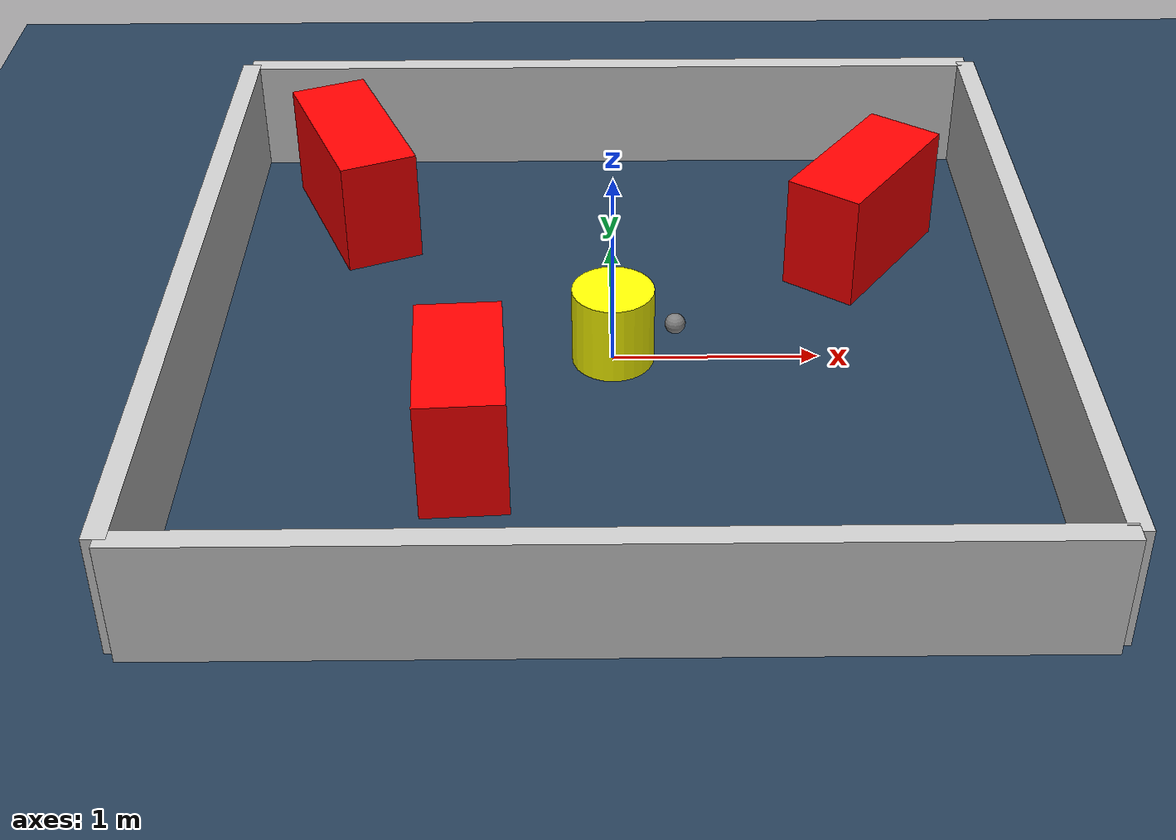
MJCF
<?xml version="1.0" ?>
<mujoco model="generated_environment">
  <option timestep="0.01" integrator="RK4" cone="elliptic"/>
  <default>
    <geom density="1"/>
  </default>
  <asset>
    <texture builtin="gradient" height="3072" rgb1="0.3 0.5 0.7" rgb2="0 0 0" type="skybox" width="512"/>
    <texture builtin="checker" height="300" mark="edge" markrgb="0.8 0.8 0.8" name="groundplane" rgb1="0.2 0.3 0.4" rgb2="0.1 0.2 0.3" type="2d" width="300"/>
    <material name="groundplane" reflectance="0.2" texrepeat="5 5" texture="groundplane" texuniform="true"/>
    <material name="robot" rgba="0.0 1.0 0.0 1"/>
  </asset>
  <worldbody>
    <light dir="0 0 -1" directional="true" pos="0 0 1.5"/>
    <geom condim="4" friction="1.0 0.005 0.001" material="groundplane" name="floor" size="0 0 0.05" type="plane"/>
    <body name="walls">
      <geom name="wall_1" condim="4" pos="-2.0 0.0 0.3" rgba="0.800000011920929 0.800000011920929 0.800000011920929 1.0" size="0.05 2.0 0.3" type="box"/>
      <geom name="wall_2" condim="4" pos="2.0 0.0 0.3" rgba="0.800000011920929 0.800000011920929 0.800000011920929 1.0" size="0.05 2.0 0.3" type="box"/>
      <geom name="wall_3" condim="4" pos="0.0 -2.0 0.3" rgba="0.800000011920929 0.800000011920929 0.800000011920929 1.0" size="2.0 0.05 0.3" type="box"/>
      <geom name="wall_4" condim="4" pos="0.0 2.0 0.3" rgba="0.800000011920929 0.800000011920929 0.800000011920929 1.0" size="2.0 0.05 0.3" type="box"/>
    </body>
    <body name="robot">
      <joint name="joint_x" type="slide" pos="0 0 0" axis="1 0 0"/>
      <joint name="joint_y" type="slide" pos="0 0 0" axis="0 1 0"/>
      <geom name="robot" type="sphere" pos="0.3 0.0 0.2" size="0.05" mass="5." friction="1.0 0.005 0.0001" condim="4" rgba="0.5 0.5 0.5 1.0"/>
      <site name="sensor_ball"/>
    </body>
    <body name="obstacle_movable_1">
      <geom name="obstacle_movable_1" condim="4" pos="0.0 0.0 0.2" euler="0 0 0.0" friction="1.0 0.005 0.001" rgba="1.0 1.0 0.0 1.0" size="0.2 0.2 0.0" type="cylinder" mass="0.1"/>
      <joint type="free"/>
    </body>
    <body name="obstacle_2_static">
      <geom name="obstacle_2_static" condim="4" pos="-0.683899217346794 -0.7960970767895472 0.3" euler="0 0 273.5716602192538" friction="1.0 0.005 0.001" rgba="1 0 0 1" size="0.3898617673979402 0.2 0.3" type="box"/>
    </body>
    <body name="obstacle_3_static">
      <geom name="obstacle_3_static" condim="4" pos="-1.3673924175542624 1.3097076216641457 0.3" euler="0 0 292.3914263782475" friction="1.0 0.005 0.001" rgba="1 0 0 1" size="0.46994579662559777 0.2 0.3" type="box"/>
    </body>
    <body name="obstacle_4_static">
      <geom name="obstacle_4_static" condim="4" pos="1.307439834690838 0.9137851700706345 0.3" euler="0 0 234.47179693888455" friction="1.0 0.005 0.001" rgba="1 0 0 1" size="0.4381890122992084 0.2 0.3" type="box"/>
    </body>
  </worldbody>
  <actuator>
    <motor name="actuator_x" joint="joint_x" gear="1" ctrlrange="-1 1"/>
    <motor name="actuator_y" joint="joint_y" gear="1" ctrlrange="-1 1"/>
  </actuator>
</mujoco>
